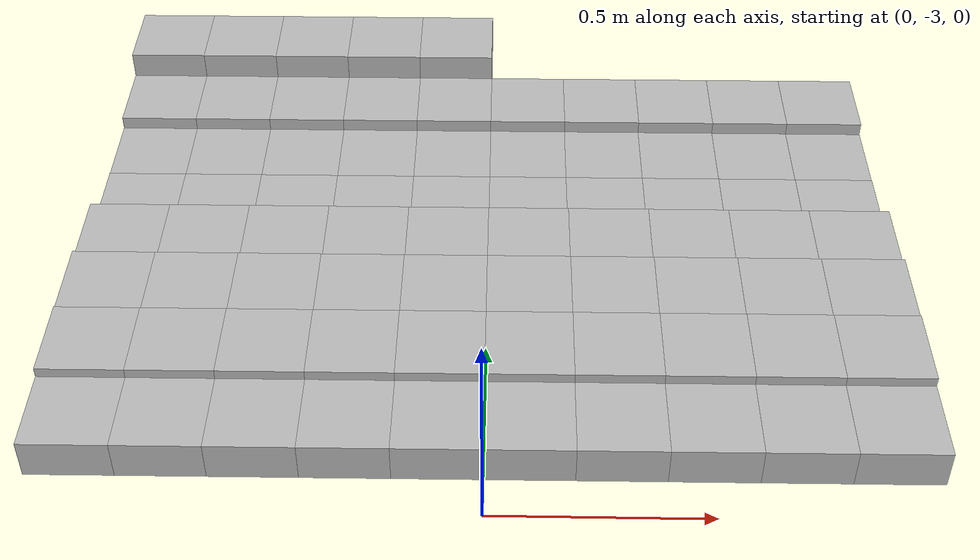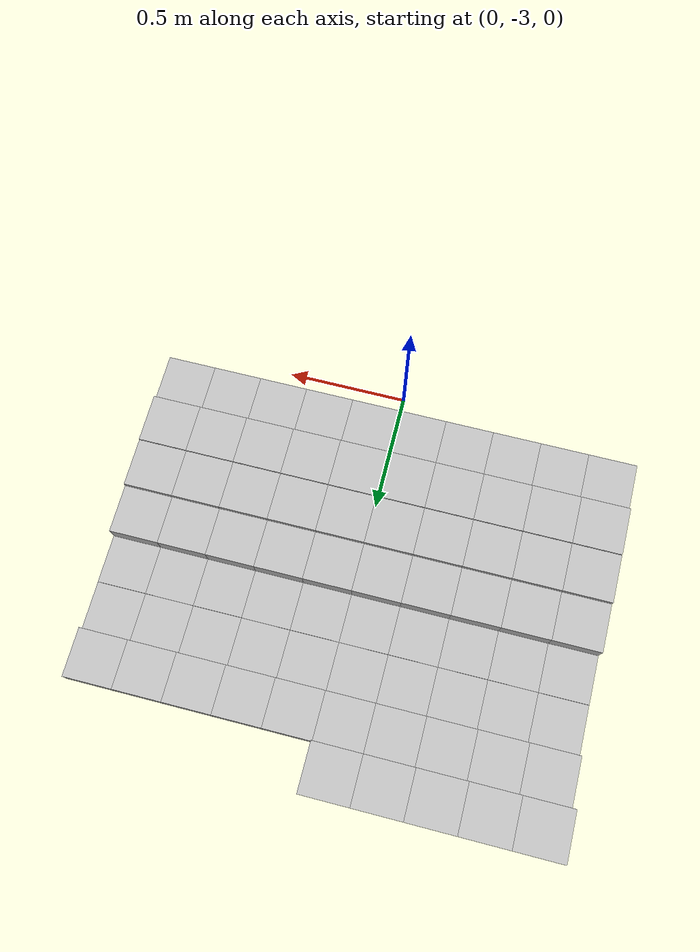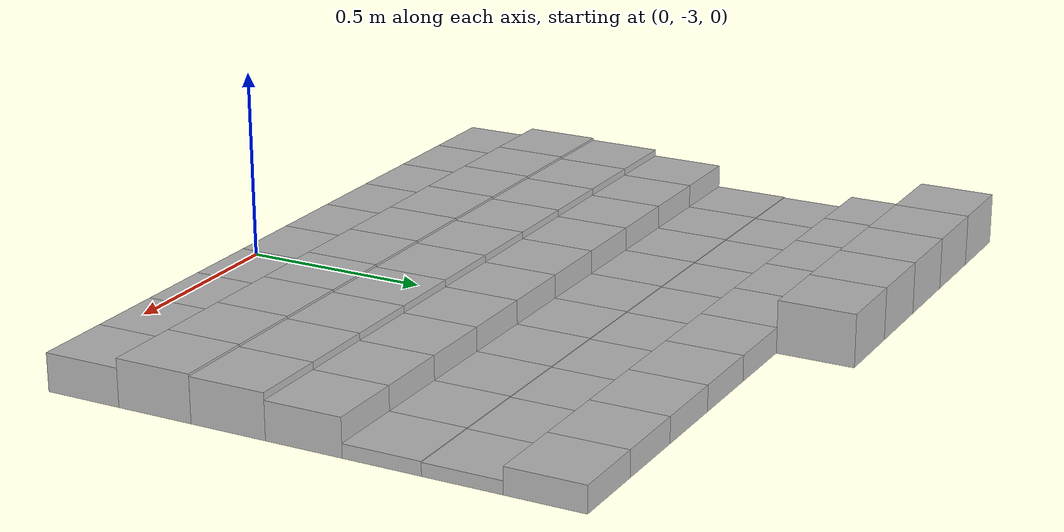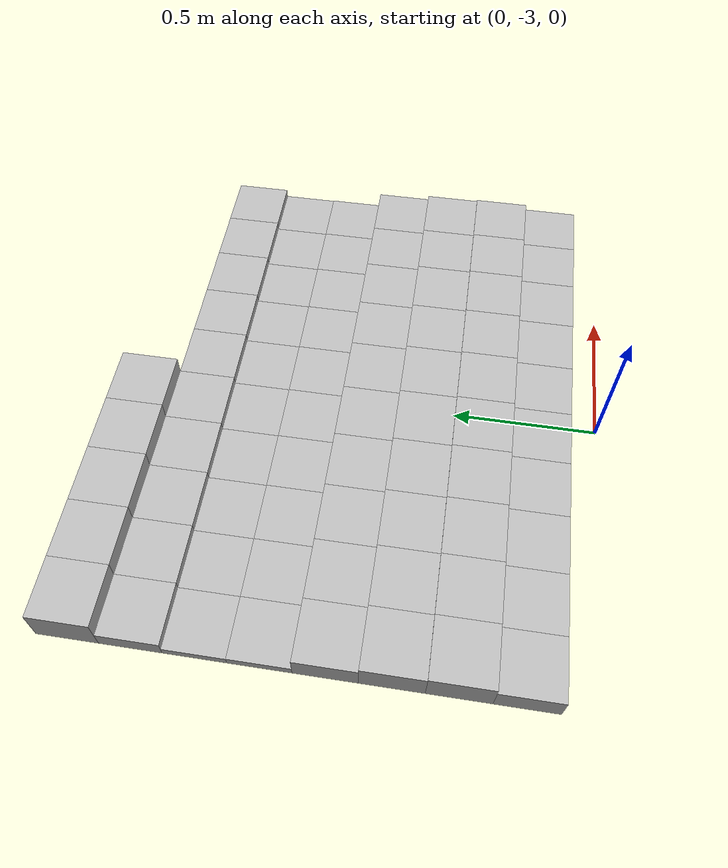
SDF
<sdf version="1.6">
 <model name="Terrain">
  <static>true</static>
  <link name="box_7_0">
   <pose>-0.9 -1.4 0.067952245221 0 0 0</pose>
   <inertial>
    <mass>1.0</mass>
    <inertia><ixx>0.0</ixx><ixy>0.0</ixy><ixz>0.0</ixz><iyy>0.0</iyy><iyz>0.0</iyz><izz>0.0</izz></inertia>
   </inertial>
   <collision name="collision"><geometry><box><size>0.2 0.2 0.135904490442</size></box></geometry></collision>
   <visual name="visual"><geometry><box><size>0.2 0.2 0.135904490442</size></box></geometry></visual>
  </link>
  <link name="box_7_1">
   <pose>-0.7 -1.4 0.067952245221 0 0 0</pose>
   <inertial>
    <mass>1.0</mass>
    <inertia><ixx>0.0</ixx><ixy>0.0</ixy><ixz>0.0</ixz><iyy>0.0</iyy><iyz>0.0</iyz><izz>0.0</izz></inertia>
   </inertial>
   <collision name="collision"><geometry><box><size>0.2 0.2 0.135904490442</size></box></geometry></collision>
   <visual name="visual"><geometry><box><size>0.2 0.2 0.135904490442</size></box></geometry></visual>
  </link>
  <link name="box_7_2">
   <pose>-0.5 -1.4 0.067952245221 0 0 0</pose>
   <inertial>
    <mass>1.0</mass>
    <inertia><ixx>0.0</ixx><ixy>0.0</ixy><ixz>0.0</ixz><iyy>0.0</iyy><iyz>0.0</iyz><izz>0.0</izz></inertia>
   </inertial>
   <collision name="collision"><geometry><box><size>0.2 0.2 0.135904490442</size></box></geometry></collision>
   <visual name="visual"><geometry><box><size>0.2 0.2 0.135904490442</size></box></geometry></visual>
  </link>
  <link name="box_7_3">
   <pose>-0.3 -1.4 0.067952245221 0 0 0</pose>
   <inertial>
    <mass>1.0</mass>
    <inertia><ixx>0.0</ixx><ixy>0.0</ixy><ixz>0.0</ixz><iyy>0.0</iyy><iyz>0.0</iyz><izz>0.0</izz></inertia>
   </inertial>
   <collision name="collision"><geometry><box><size>0.2 0.2 0.135904490442</size></box></geometry></collision>
   <visual name="visual"><geometry><box><size>0.2 0.2 0.135904490442</size></box></geometry></visual>
  </link>
  <link name="box_7_4">
   <pose>-0.1 -1.4 0.067952245221 0 0 0</pose>
   <inertial>
    <mass>1.0</mass>
    <inertia><ixx>0.0</ixx><ixy>0.0</ixy><ixz>0.0</ixz><iyy>0.0</iyy><iyz>0.0</iyz><izz>0.0</izz></inertia>
   </inertial>
   <collision name="collision"><geometry><box><size>0.2 0.2 0.135904490442</size></box></geometry></collision>
   <visual name="visual"><geometry><box><size>0.2 0.2 0.135904490442</size></box></geometry></visual>
  </link>
  <link name="box_8_0">
   <pose>-0.9 -1.6 0.0331757197622 0 0 0</pose>
   <inertial>
    <mass>1.0</mass>
    <inertia><ixx>0.0</ixx><ixy>0.0</ixy><ixz>0.0</ixz><iyy>0.0</iyy><iyz>0.0</iyz><izz>0.0</izz></inertia>
   </inertial>
   <collision name="collision"><geometry><box><size>0.2 0.2 0.0663514395244</size></box></geometry></collision>
   <visual name="visual"><geometry><box><size>0.2 0.2 0.0663514395244</size></box></geometry></visual>
  </link>
  <link name="box_8_1">
   <pose>-0.7 -1.6 0.0331757197622 0 0 0</pose>
   <inertial>
    <mass>1.0</mass>
    <inertia><ixx>0.0</ixx><ixy>0.0</ixy><ixz>0.0</ixz><iyy>0.0</iyy><iyz>0.0</iyz><izz>0.0</izz></inertia>
   </inertial>
   <collision name="collision"><geometry><box><size>0.2 0.2 0.0663514395244</size></box></geometry></collision>
   <visual name="visual"><geometry><box><size>0.2 0.2 0.0663514395244</size></box></geometry></visual>
  </link>
  <link name="box_8_2">
   <pose>-0.5 -1.6 0.0331757197622 0 0 0</pose>
   <inertial>
    <mass>1.0</mass>
    <inertia><ixx>0.0</ixx><ixy>0.0</ixy><ixz>0.0</ixz><iyy>0.0</iyy><iyz>0.0</iyz><izz>0.0</izz></inertia>
   </inertial>
   <collision name="collision"><geometry><box><size>0.2 0.2 0.0663514395244</size></box></geometry></collision>
   <visual name="visual"><geometry><box><size>0.2 0.2 0.0663514395244</size></box></geometry></visual>
  </link>
  <link name="box_8_3">
   <pose>-0.3 -1.6 0.0331757197622 0 0 0</pose>
   <inertial>
    <mass>1.0</mass>
    <inertia><ixx>0.0</ixx><ixy>0.0</ixy><ixz>0.0</ixz><iyy>0.0</iyy><iyz>0.0</iyz><izz>0.0</izz></inertia>
   </inertial>
   <collision name="collision"><geometry><box><size>0.2 0.2 0.0663514395244</size></box></geometry></collision>
   <visual name="visual"><geometry><box><size>0.2 0.2 0.0663514395244</size></box></geometry></visual>
  </link>
  <link name="box_8_4">
   <pose>-0.1 -1.6 0.0331757197622 0 0 0</pose>
   <inertial>
    <mass>1.0</mass>
    <inertia><ixx>0.0</ixx><ixy>0.0</ixy><ixz>0.0</ixz><iyy>0.0</iyy><iyz>0.0</iyz><izz>0.0</izz></inertia>
   </inertial>
   <collision name="collision"><geometry><box><size>0.2 0.2 0.0663514395244</size></box></geometry></collision>
   <visual name="visual"><geometry><box><size>0.2 0.2 0.0663514395244</size></box></geometry></visual>
  </link>
  <link name="box_8_5">
   <pose>0.1 -1.6 0.0331757197622 0 0 0</pose>
   <inertial>
    <mass>1.0</mass>
    <inertia><ixx>0.0</ixx><ixy>0.0</ixy><ixz>0.0</ixz><iyy>0.0</iyy><iyz>0.0</iyz><izz>0.0</izz></inertia>
   </inertial>
   <collision name="collision"><geometry><box><size>0.2 0.2 0.0663514395244</size></box></geometry></collision>
   <visual name="visual"><geometry><box><size>0.2 0.2 0.0663514395244</size></box></geometry></visual>
  </link>
  <link name="box_8_6">
   <pose>0.3 -1.6 0.0331757197622 0 0 0</pose>
   <inertial>
    <mass>1.0</mass>
    <inertia><ixx>0.0</ixx><ixy>0.0</ixy><ixz>0.0</ixz><iyy>0.0</iyy><iyz>0.0</iyz><izz>0.0</izz></inertia>
   </inertial>
   <collision name="collision"><geometry><box><size>0.2 0.2 0.0663514395244</size></box></geometry></collision>
   <visual name="visual"><geometry><box><size>0.2 0.2 0.0663514395244</size></box></geometry></visual>
  </link>
  <link name="box_8_7">
   <pose>0.5 -1.6 0.0331757197622 0 0 0</pose>
   <inertial>
    <mass>1.0</mass>
    <inertia><ixx>0.0</ixx><ixy>0.0</ixy><ixz>0.0</ixz><iyy>0.0</iyy><iyz>0.0</iyz><izz>0.0</izz></inertia>
   </inertial>
   <collision name="collision"><geometry><box><size>0.2 0.2 0.0663514395244</size></box></geometry></collision>
   <visual name="visual"><geometry><box><size>0.2 0.2 0.0663514395244</size></box></geometry></visual>
  </link>
  <link name="box_8_8">
   <pose>0.7 -1.6 0.0331757197622 0 0 0</pose>
   <inertial>
    <mass>1.0</mass>
    <inertia><ixx>0.0</ixx><ixy>0.0</ixy><ixz>0.0</ixz><iyy>0.0</iyy><iyz>0.0</iyz><izz>0.0</izz></inertia>
   </inertial>
   <collision name="collision"><geometry><box><size>0.2 0.2 0.0663514395244</size></box></geometry></collision>
   <visual name="visual"><geometry><box><size>0.2 0.2 0.0663514395244</size></box></geometry></visual>
  </link>
  <link name="box_8_9">
   <pose>0.9 -1.6 0.0331757197622 0 0 0</pose>
   <inertial>
    <mass>1.0</mass>
    <inertia><ixx>0.0</ixx><ixy>0.0</ixy><ixz>0.0</ixz><iyy>0.0</iyy><iyz>0.0</iyz><izz>0.0</izz></inertia>
   </inertial>
   <collision name="collision"><geometry><box><size>0.2 0.2 0.0663514395244</size></box></geometry></collision>
   <visual name="visual"><geometry><box><size>0.2 0.2 0.0663514395244</size></box></geometry></visual>
  </link>
  <link name="box_9_0">
   <pose>-0.9 -1.8 0.0165482107852 0 0 0</pose>
   <inertial>
    <mass>1.0</mass>
    <inertia><ixx>0.0</ixx><ixy>0.0</ixy><ixz>0.0</ixz><iyy>0.0</iyy><iyz>0.0</iyz><izz>0.0</izz></inertia>
   </inertial>
   <collision name="collision"><geometry><box><size>0.2 0.2 0.0330964215704</size></box></geometry></collision>
   <visual name="visual"><geometry><box><size>0.2 0.2 0.0330964215704</size></box></geometry></visual>
  </link>
  <link name="box_9_1">
   <pose>-0.7 -1.8 0.0165482107852 0 0 0</pose>
   <inertial>
    <mass>1.0</mass>
    <inertia><ixx>0.0</ixx><ixy>0.0</ixy><ixz>0.0</ixz><iyy>0.0</iyy><iyz>0.0</iyz><izz>0.0</izz></inertia>
   </inertial>
   <collision name="collision"><geometry><box><size>0.2 0.2 0.0330964215704</size></box></geometry></collision>
   <visual name="visual"><geometry><box><size>0.2 0.2 0.0330964215704</size></box></geometry></visual>
  </link>
  <link name="box_9_2">
   <pose>-0.5 -1.8 0.0165482107852 0 0 0</pose>
   <inertial>
    <mass>1.0</mass>
    <inertia><ixx>0.0</ixx><ixy>0.0</ixy><ixz>0.0</ixz><iyy>0.0</iyy><iyz>0.0</iyz><izz>0.0</izz></inertia>
   </inertial>
   <collision name="collision"><geometry><box><size>0.2 0.2 0.0330964215704</size></box></geometry></collision>
   <visual name="visual"><geometry><box><size>0.2 0.2 0.0330964215704</size></box></geometry></visual>
  </link>
  <link name="box_9_3">
   <pose>-0.3 -1.8 0.0165482107852 0 0 0</pose>
   <inertial>
    <mass>1.0</mass>
    <inertia><ixx>0.0</ixx><ixy>0.0</ixy><ixz>0.0</ixz><iyy>0.0</iyy><iyz>0.0</iyz><izz>0.0</izz></inertia>
   </inertial>
   <collision name="collision"><geometry><box><size>0.2 0.2 0.0330964215704</size></box></geometry></collision>
   <visual name="visual"><geometry><box><size>0.2 0.2 0.0330964215704</size></box></geometry></visual>
  </link>
  <link name="box_9_4">
   <pose>-0.1 -1.8 0.0165482107852 0 0 0</pose>
   <inertial>
    <mass>1.0</mass>
    <inertia><ixx>0.0</ixx><ixy>0.0</ixy><ixz>0.0</ixz><iyy>0.0</iyy><iyz>0.0</iyz><izz>0.0</izz></inertia>
   </inertial>
   <collision name="collision"><geometry><box><size>0.2 0.2 0.0330964215704</size></box></geometry></collision>
   <visual name="visual"><geometry><box><size>0.2 0.2 0.0330964215704</size></box></geometry></visual>
  </link>
  <link name="box_9_5">
   <pose>0.1 -1.8 0.0165482107852 0 0 0</pose>
   <inertial>
    <mass>1.0</mass>
    <inertia><ixx>0.0</ixx><ixy>0.0</ixy><ixz>0.0</ixz><iyy>0.0</iyy><iyz>0.0</iyz><izz>0.0</izz></inertia>
   </inertial>
   <collision name="collision"><geometry><box><size>0.2 0.2 0.0330964215704</size></box></geometry></collision>
   <visual name="visual"><geometry><box><size>0.2 0.2 0.0330964215704</size></box></geometry></visual>
  </link>
  <link name="box_9_6">
   <pose>0.3 -1.8 0.0165482107852 0 0 0</pose>
   <inertial>
    <mass>1.0</mass>
    <inertia><ixx>0.0</ixx><ixy>0.0</ixy><ixz>0.0</ixz><iyy>0.0</iyy><iyz>0.0</iyz><izz>0.0</izz></inertia>
   </inertial>
   <collision name="collision"><geometry><box><size>0.2 0.2 0.0330964215704</size></box></geometry></collision>
   <visual name="visual"><geometry><box><size>0.2 0.2 0.0330964215704</size></box></geometry></visual>
  </link>
  <link name="box_9_7">
   <pose>0.5 -1.8 0.0165482107852 0 0 0</pose>
   <inertial>
    <mass>1.0</mass>
    <inertia><ixx>0.0</ixx><ixy>0.0</ixy><ixz>0.0</ixz><iyy>0.0</iyy><iyz>0.0</iyz><izz>0.0</izz></inertia>
   </inertial>
   <collision name="collision"><geometry><box><size>0.2 0.2 0.0330964215704</size></box></geometry></collision>
   <visual name="visual"><geometry><box><size>0.2 0.2 0.0330964215704</size></box></geometry></visual>
  </link>
  <link name="box_9_8">
   <pose>0.7 -1.8 0.0165482107852 0 0 0</pose>
   <inertial>
    <mass>1.0</mass>
    <inertia><ixx>0.0</ixx><ixy>0.0</ixy><ixz>0.0</ixz><iyy>0.0</iyy><iyz>0.0</iyz><izz>0.0</izz></inertia>
   </inertial>
   <collision name="collision"><geometry><box><size>0.2 0.2 0.0330964215704</size></box></geometry></collision>
   <visual name="visual"><geometry><box><size>0.2 0.2 0.0330964215704</size></box></geometry></visual>
  </link>
  <link name="box_9_9">
   <pose>0.9 -1.8 0.0165482107852 0 0 0</pose>
   <inertial>
    <mass>1.0</mass>
    <inertia><ixx>0.0</ixx><ixy>0.0</ixy><ixz>0.0</ixz><iyy>0.0</iyy><iyz>0.0</iyz><izz>0.0</izz></inertia>
   </inertial>
   <collision name="collision"><geometry><box><size>0.2 0.2 0.0330964215704</size></box></geometry></collision>
   <visual name="visual"><geometry><box><size>0.2 0.2 0.0330964215704</size></box></geometry></visual>
  </link>
  <link name="box_10_0">
   <pose>-0.9 -2.0 0.0176340561365 0 0 0</pose>
   <inertial>
    <mass>1.0</mass>
    <inertia><ixx>0.0</ixx><ixy>0.0</ixy><ixz>0.0</ixz><iyy>0.0</iyy><iyz>0.0</iyz><izz>0.0</izz></inertia>
   </inertial>
   <collision name="collision"><geometry><box><size>0.2 0.2 0.0352681122729</size></box></geometry></collision>
   <visual name="visual"><geometry><box><size>0.2 0.2 0.0352681122729</size></box></geometry></visual>
  </link>
  <link name="box_10_1">
   <pose>-0.7 -2.0 0.0176340561365 0 0 0</pose>
   <inertial>
    <mass>1.0</mass>
    <inertia><ixx>0.0</ixx><ixy>0.0</ixy><ixz>0.0</ixz><iyy>0.0</iyy><iyz>0.0</iyz><izz>0.0</izz></inertia>
   </inertial>
   <collision name="collision"><geometry><box><size>0.2 0.2 0.0352681122729</size></box></geometry></collision>
   <visual name="visual"><geometry><box><size>0.2 0.2 0.0352681122729</size></box></geometry></visual>
  </link>
  <link name="box_10_2">
   <pose>-0.5 -2.0 0.0176340561365 0 0 0</pose>
   <inertial>
    <mass>1.0</mass>
    <inertia><ixx>0.0</ixx><ixy>0.0</ixy><ixz>0.0</ixz><iyy>0.0</iyy><iyz>0.0</iyz><izz>0.0</izz></inertia>
   </inertial>
   <collision name="collision"><geometry><box><size>0.2 0.2 0.0352681122729</size></box></geometry></collision>
   <visual name="visual"><geometry><box><size>0.2 0.2 0.0352681122729</size></box></geometry></visual>
  </link>
  <link name="box_10_3">
   <pose>-0.3 -2.0 0.0176340561365 0 0 0</pose>
   <inertial>
    <mass>1.0</mass>
    <inertia><ixx>0.0</ixx><ixy>0.0</ixy><ixz>0.0</ixz><iyy>0.0</iyy><iyz>0.0</iyz><izz>0.0</izz></inertia>
   </inertial>
   <collision name="collision"><geometry><box><size>0.2 0.2 0.0352681122729</size></box></geometry></collision>
   <visual name="visual"><geometry><box><size>0.2 0.2 0.0352681122729</size></box></geometry></visual>
  </link>
  <link name="box_10_4">
   <pose>-0.1 -2.0 0.0176340561365 0 0 0</pose>
   <inertial>
    <mass>1.0</mass>
    <inertia><ixx>0.0</ixx><ixy>0.0</ixy><ixz>0.0</ixz><iyy>0.0</iyy><iyz>0.0</iyz><izz>0.0</izz></inertia>
   </inertial>
   <collision name="collision"><geometry><box><size>0.2 0.2 0.0352681122729</size></box></geometry></collision>
   <visual name="visual"><geometry><box><size>0.2 0.2 0.0352681122729</size></box></geometry></visual>
  </link>
  <link name="box_10_5">
   <pose>0.1 -2.0 0.0176340561365 0 0 0</pose>
   <inertial>
    <mass>1.0</mass>
    <inertia><ixx>0.0</ixx><ixy>0.0</ixy><ixz>0.0</ixz><iyy>0.0</iyy><iyz>0.0</iyz><izz>0.0</izz></inertia>
   </inertial>
   <collision name="collision"><geometry><box><size>0.2 0.2 0.0352681122729</size></box></geometry></collision>
   <visual name="visual"><geometry><box><size>0.2 0.2 0.0352681122729</size></box></geometry></visual>
  </link>
  <link name="box_10_6">
   <pose>0.3 -2.0 0.0176340561365 0 0 0</pose>
   <inertial>
    <mass>1.0</mass>
    <inertia><ixx>0.0</ixx><ixy>0.0</ixy><ixz>0.0</ixz><iyy>0.0</iyy><iyz>0.0</iyz><izz>0.0</izz></inertia>
   </inertial>
   <collision name="collision"><geometry><box><size>0.2 0.2 0.0352681122729</size></box></geometry></collision>
   <visual name="visual"><geometry><box><size>0.2 0.2 0.0352681122729</size></box></geometry></visual>
  </link>
  <link name="box_10_7">
   <pose>0.5 -2.0 0.0176340561365 0 0 0</pose>
   <inertial>
    <mass>1.0</mass>
    <inertia><ixx>0.0</ixx><ixy>0.0</ixy><ixz>0.0</ixz><iyy>0.0</iyy><iyz>0.0</iyz><izz>0.0</izz></inertia>
   </inertial>
   <collision name="collision"><geometry><box><size>0.2 0.2 0.0352681122729</size></box></geometry></collision>
   <visual name="visual"><geometry><box><size>0.2 0.2 0.0352681122729</size></box></geometry></visual>
  </link>
  <link name="box_10_8">
   <pose>0.7 -2.0 0.0176340561365 0 0 0</pose>
   <inertial>
    <mass>1.0</mass>
    <inertia><ixx>0.0</ixx><ixy>0.0</ixy><ixz>0.0</ixz><iyy>0.0</iyy><iyz>0.0</iyz><izz>0.0</izz></inertia>
   </inertial>
   <collision name="collision"><geometry><box><size>0.2 0.2 0.0352681122729</size></box></geometry></collision>
   <visual name="visual"><geometry><box><size>0.2 0.2 0.0352681122729</size></box></geometry></visual>
  </link>
  <link name="box_10_9">
   <pose>0.9 -2.0 0.0176340561365 0 0 0</pose>
   <inertial>
    <mass>1.0</mass>
    <inertia><ixx>0.0</ixx><ixy>0.0</ixy><ixz>0.0</ixz><iyy>0.0</iyy><iyz>0.0</iyz><izz>0.0</izz></inertia>
   </inertial>
   <collision name="collision"><geometry><box><size>0.2 0.2 0.0352681122729</size></box></geometry></collision>
   <visual name="visual"><geometry><box><size>0.2 0.2 0.0352681122729</size></box></geometry></visual>
  </link>
  <link name="box_11_0">
   <pose>-0.9 -2.2 0.0486845954862 0 0 0</pose>
   <inertial>
    <mass>1.0</mass>
    <inertia><ixx>0.0</ixx><ixy>0.0</ixy><ixz>0.0</ixz><iyy>0.0</iyy><iyz>0.0</iyz><izz>0.0</izz></inertia>
   </inertial>
   <collision name="collision"><geometry><box><size>0.2 0.2 0.0973691909724</size></box></geometry></collision>
   <visual name="visual"><geometry><box><size>0.2 0.2 0.0973691909724</size></box></geometry></visual>
  </link>
  <link name="box_11_1">
   <pose>-0.7 -2.2 0.0486845954862 0 0 0</pose>
   <inertial>
    <mass>1.0</mass>
    <inertia><ixx>0.0</ixx><ixy>0.0</ixy><ixz>0.0</ixz><iyy>0.0</iyy><iyz>0.0</iyz><izz>0.0</izz></inertia>
   </inertial>
   <collision name="collision"><geometry><box><size>0.2 0.2 0.0973691909724</size></box></geometry></collision>
   <visual name="visual"><geometry><box><size>0.2 0.2 0.0973691909724</size></box></geometry></visual>
  </link>
  <link name="box_11_2">
   <pose>-0.5 -2.2 0.0486845954862 0 0 0</pose>
   <inertial>
    <mass>1.0</mass>
    <inertia><ixx>0.0</ixx><ixy>0.0</ixy><ixz>0.0</ixz><iyy>0.0</iyy><iyz>0.0</iyz><izz>0.0</izz></inertia>
   </inertial>
   <collision name="collision"><geometry><box><size>0.2 0.2 0.0973691909724</size></box></geometry></collision>
   <visual name="visual"><geometry><box><size>0.2 0.2 0.0973691909724</size></box></geometry></visual>
  </link>
  <link name="box_11_3">
   <pose>-0.3 -2.2 0.0486845954862 0 0 0</pose>
   <inertial>
    <mass>1.0</mass>
    <inertia><ixx>0.0</ixx><ixy>0.0</ixy><ixz>0.0</ixz><iyy>0.0</iyy><iyz>0.0</iyz><izz>0.0</izz></inertia>
   </inertial>
   <collision name="collision"><geometry><box><size>0.2 0.2 0.0973691909724</size></box></geometry></collision>
   <visual name="visual"><geometry><box><size>0.2 0.2 0.0973691909724</size></box></geometry></visual>
  </link>
  <link name="box_11_4">
   <pose>-0.1 -2.2 0.0486845954862 0 0 0</pose>
   <inertial>
    <mass>1.0</mass>
    <inertia><ixx>0.0</ixx><ixy>0.0</ixy><ixz>0.0</ixz><iyy>0.0</iyy><iyz>0.0</iyz><izz>0.0</izz></inertia>
   </inertial>
   <collision name="collision"><geometry><box><size>0.2 0.2 0.0973691909724</size></box></geometry></collision>
   <visual name="visual"><geometry><box><size>0.2 0.2 0.0973691909724</size></box></geometry></visual>
  </link>
  <link name="box_11_5">
   <pose>0.1 -2.2 0.0486845954862 0 0 0</pose>
   <inertial>
    <mass>1.0</mass>
    <inertia><ixx>0.0</ixx><ixy>0.0</ixy><ixz>0.0</ixz><iyy>0.0</iyy><iyz>0.0</iyz><izz>0.0</izz></inertia>
   </inertial>
   <collision name="collision"><geometry><box><size>0.2 0.2 0.0973691909724</size></box></geometry></collision>
   <visual name="visual"><geometry><box><size>0.2 0.2 0.0973691909724</size></box></geometry></visual>
  </link>
  <link name="box_11_6">
   <pose>0.3 -2.2 0.0486845954862 0 0 0</pose>
   <inertial>
    <mass>1.0</mass>
    <inertia><ixx>0.0</ixx><ixy>0.0</ixy><ixz>0.0</ixz><iyy>0.0</iyy><iyz>0.0</iyz><izz>0.0</izz></inertia>
   </inertial>
   <collision name="collision"><geometry><box><size>0.2 0.2 0.0973691909724</size></box></geometry></collision>
   <visual name="visual"><geometry><box><size>0.2 0.2 0.0973691909724</size></box></geometry></visual>
  </link>
  <link name="box_11_7">
   <pose>0.5 -2.2 0.0486845954862 0 0 0</pose>
   <inertial>
    <mass>1.0</mass>
    <inertia><ixx>0.0</ixx><ixy>0.0</ixy><ixz>0.0</ixz><iyy>0.0</iyy><iyz>0.0</iyz><izz>0.0</izz></inertia>
   </inertial>
   <collision name="collision"><geometry><box><size>0.2 0.2 0.0973691909724</size></box></geometry></collision>
   <visual name="visual"><geometry><box><size>0.2 0.2 0.0973691909724</size></box></geometry></visual>
  </link>
  <link name="box_11_8">
   <pose>0.7 -2.2 0.0486845954862 0 0 0</pose>
   <inertial>
    <mass>1.0</mass>
    <inertia><ixx>0.0</ixx><ixy>0.0</ixy><ixz>0.0</ixz><iyy>0.0</iyy><iyz>0.0</iyz><izz>0.0</izz></inertia>
   </inertial>
   <collision name="collision"><geometry><box><size>0.2 0.2 0.0973691909724</size></box></geometry></collision>
   <visual name="visual"><geometry><box><size>0.2 0.2 0.0973691909724</size></box></geometry></visual>
  </link>
  <link name="box_11_9">
   <pose>0.9 -2.2 0.0486845954862 0 0 0</pose>
   <inertial>
    <mass>1.0</mass>
    <inertia><ixx>0.0</ixx><ixy>0.0</ixy><ixz>0.0</ixz><iyy>0.0</iyy><iyz>0.0</iyz><izz>0.0</izz></inertia>
   </inertial>
   <collision name="collision"><geometry><box><size>0.2 0.2 0.0973691909724</size></box></geometry></collision>
   <visual name="visual"><geometry><box><size>0.2 0.2 0.0973691909724</size></box></geometry></visual>
  </link>
  <link name="box_12_0">
   <pose>-0.9 -2.4 0.0577402236175 0 0 0</pose>
   <inertial>
    <mass>1.0</mass>
    <inertia><ixx>0.0</ixx><ixy>0.0</ixy><ixz>0.0</ixz><iyy>0.0</iyy><iyz>0.0</iyz><izz>0.0</izz></inertia>
   </inertial>
   <collision name="collision"><geometry><box><size>0.2 0.2 0.115480447235</size></box></geometry></collision>
   <visual name="visual"><geometry><box><size>0.2 0.2 0.115480447235</size></box></geometry></visual>
  </link>
  <link name="box_12_1">
   <pose>-0.7 -2.4 0.0577402236175 0 0 0</pose>
   <inertial>
    <mass>1.0</mass>
    <inertia><ixx>0.0</ixx><ixy>0.0</ixy><ixz>0.0</ixz><iyy>0.0</iyy><iyz>0.0</iyz><izz>0.0</izz></inertia>
   </inertial>
   <collision name="collision"><geometry><box><size>0.2 0.2 0.115480447235</size></box></geometry></collision>
   <visual name="visual"><geometry><box><size>0.2 0.2 0.115480447235</size></box></geometry></visual>
  </link>
  <link name="box_12_2">
   <pose>-0.5 -2.4 0.0577402236175 0 0 0</pose>
   <inertial>
    <mass>1.0</mass>
    <inertia><ixx>0.0</ixx><ixy>0.0</ixy><ixz>0.0</ixz><iyy>0.0</iyy><iyz>0.0</iyz><izz>0.0</izz></inertia>
   </inertial>
   <collision name="collision"><geometry><box><size>0.2 0.2 0.115480447235</size></box></geometry></collision>
   <visual name="visual"><geometry><box><size>0.2 0.2 0.115480447235</size></box></geometry></visual>
  </link>
  <link name="box_12_3">
   <pose>-0.3 -2.4 0.0577402236175 0 0 0</pose>
   <inertial>
    <mass>1.0</mass>
    <inertia><ixx>0.0</ixx><ixy>0.0</ixy><ixz>0.0</ixz><iyy>0.0</iyy><iyz>0.0</iyz><izz>0.0</izz></inertia>
   </inertial>
   <collision name="collision"><geometry><box><size>0.2 0.2 0.115480447235</size></box></geometry></collision>
   <visual name="visual"><geometry><box><size>0.2 0.2 0.115480447235</size></box></geometry></visual>
  </link>
  <link name="box_12_4">
   <pose>-0.1 -2.4 0.0577402236175 0 0 0</pose>
   <inertial>
    <mass>1.0</mass>
    <inertia><ixx>0.0</ixx><ixy>0.0</ixy><ixz>0.0</ixz><iyy>0.0</iyy><iyz>0.0</iyz><izz>0.0</izz></inertia>
   </inertial>
   <collision name="collision"><geometry><box><size>0.2 0.2 0.115480447235</size></box></geometry></collision>
   <visual name="visual"><geometry><box><size>0.2 0.2 0.115480447235</size></box></geometry></visual>
  </link>
  <link name="box_12_5">
   <pose>0.1 -2.4 0.0577402236175 0 0 0</pose>
   <inertial>
    <mass>1.0</mass>
    <inertia><ixx>0.0</ixx><ixy>0.0</ixy><ixz>0.0</ixz><iyy>0.0</iyy><iyz>0.0</iyz><izz>0.0</izz></inertia>
   </inertial>
   <collision name="collision"><geometry><box><size>0.2 0.2 0.115480447235</size></box></geometry></collision>
   <visual name="visual"><geometry><box><size>0.2 0.2 0.115480447235</size></box></geometry></visual>
  </link>
  <link name="box_12_6">
   <pose>0.3 -2.4 0.0577402236175 0 0 0</pose>
   <inertial>
    <mass>1.0</mass>
    <inertia><ixx>0.0</ixx><ixy>0.0</ixy><ixz>0.0</ixz><iyy>0.0</iyy><iyz>0.0</iyz><izz>0.0</izz></inertia>
   </inertial>
   <collision name="collision"><geometry><box><size>0.2 0.2 0.115480447235</size></box></geometry></collision>
   <visual name="visual"><geometry><box><size>0.2 0.2 0.115480447235</size></box></geometry></visual>
  </link>
  <link name="box_12_7">
   <pose>0.5 -2.4 0.0577402236175 0 0 0</pose>
   <inertial>
    <mass>1.0</mass>
    <inertia><ixx>0.0</ixx><ixy>0.0</ixy><ixz>0.0</ixz><iyy>0.0</iyy><iyz>0.0</iyz><izz>0.0</izz></inertia>
   </inertial>
   <collision name="collision"><geometry><box><size>0.2 0.2 0.115480447235</size></box></geometry></collision>
   <visual name="visual"><geometry><box><size>0.2 0.2 0.115480447235</size></box></geometry></visual>
  </link>
  <link name="box_12_8">
   <pose>0.7 -2.4 0.0577402236175 0 0 0</pose>
   <inertial>
    <mass>1.0</mass>
    <inertia><ixx>0.0</ixx><ixy>0.0</ixy><ixz>0.0</ixz><iyy>0.0</iyy><iyz>0.0</iyz><izz>0.0</izz></inertia>
   </inertial>
   <collision name="collision"><geometry><box><size>0.2 0.2 0.115480447235</size></box></geometry></collision>
   <visual name="visual"><geometry><box><size>0.2 0.2 0.115480447235</size></box></geometry></visual>
  </link>
  <link name="box_12_9">
   <pose>0.9 -2.4 0.0577402236175 0 0 0</pose>
   <inertial>
    <mass>1.0</mass>
    <inertia><ixx>0.0</ixx><ixy>0.0</ixy><ixz>0.0</ixz><iyy>0.0</iyy><iyz>0.0</iyz><izz>0.0</izz></inertia>
   </inertial>
   <collision name="collision"><geometry><box><size>0.2 0.2 0.115480447235</size></box></geometry></collision>
   <visual name="visual"><geometry><box><size>0.2 0.2 0.115480447235</size></box></geometry></visual>
  </link>
  <link name="box_13_0">
   <pose>-0.9 -2.6 0.0606669316536 0 0 0</pose>
   <inertial>
    <mass>1.0</mass>
    <inertia><ixx>0.0</ixx><ixy>0.0</ixy><ixz>0.0</ixz><iyy>0.0</iyy><iyz>0.0</iyz><izz>0.0</izz></inertia>
   </inertial>
   <collision name="collision"><geometry><box><size>0.2 0.2 0.121333863307</size></box></geometry></collision>
   <visual name="visual"><geometry><box><size>0.2 0.2 0.121333863307</size></box></geometry></visual>
  </link>
  <link name="box_13_1">
   <pose>-0.7 -2.6 0.0606669316536 0 0 0</pose>
   <inertial>
    <mass>1.0</mass>
    <inertia><ixx>0.0</ixx><ixy>0.0</ixy><ixz>0.0</ixz><iyy>0.0</iyy><iyz>0.0</iyz><izz>0.0</izz></inertia>
   </inertial>
   <collision name="collision"><geometry><box><size>0.2 0.2 0.121333863307</size></box></geometry></collision>
   <visual name="visual"><geometry><box><size>0.2 0.2 0.121333863307</size></box></geometry></visual>
  </link>
  <link name="box_13_2">
   <pose>-0.5 -2.6 0.0606669316536 0 0 0</pose>
   <inertial>
    <mass>1.0</mass>
    <inertia><ixx>0.0</ixx><ixy>0.0</ixy><ixz>0.0</ixz><iyy>0.0</iyy><iyz>0.0</iyz><izz>0.0</izz></inertia>
   </inertial>
   <collision name="collision"><geometry><box><size>0.2 0.2 0.121333863307</size></box></geometry></collision>
   <visual name="visual"><geometry><box><size>0.2 0.2 0.121333863307</size></box></geometry></visual>
  </link>
  <link name="box_13_3">
   <pose>-0.3 -2.6 0.0606669316536 0 0 0</pose>
   <inertial>
    <mass>1.0</mass>
    <inertia><ixx>0.0</ixx><ixy>0.0</ixy><ixz>0.0</ixz><iyy>0.0</iyy><iyz>0.0</iyz><izz>0.0</izz></inertia>
   </inertial>
   <collision name="collision"><geometry><box><size>0.2 0.2 0.121333863307</size></box></geometry></collision>
   <visual name="visual"><geometry><box><size>0.2 0.2 0.121333863307</size></box></geometry></visual>
  </link>
  <link name="box_13_4">
   <pose>-0.1 -2.6 0.0606669316536 0 0 0</pose>
   <inertial>
    <mass>1.0</mass>
    <inertia><ixx>0.0</ixx><ixy>0.0</ixy><ixz>0.0</ixz><iyy>0.0</iyy><iyz>0.0</iyz><izz>0.0</izz></inertia>
   </inertial>
   <collision name="collision"><geometry><box><size>0.2 0.2 0.121333863307</size></box></geometry></collision>
   <visual name="visual"><geometry><box><size>0.2 0.2 0.121333863307</size></box></geometry></visual>
  </link>
  <link name="box_13_5">
   <pose>0.1 -2.6 0.0606669316536 0 0 0</pose>
   <inertial>
    <mass>1.0</mass>
    <inertia><ixx>0.0</ixx><ixy>0.0</ixy><ixz>0.0</ixz><iyy>0.0</iyy><iyz>0.0</iyz><izz>0.0</izz></inertia>
   </inertial>
   <collision name="collision"><geometry><box><size>0.2 0.2 0.121333863307</size></box></geometry></collision>
   <visual name="visual"><geometry><box><size>0.2 0.2 0.121333863307</size></box></geometry></visual>
  </link>
  <link name="box_13_6">
   <pose>0.3 -2.6 0.0606669316536 0 0 0</pose>
   <inertial>
    <mass>1.0</mass>
    <inertia><ixx>0.0</ixx><ixy>0.0</ixy><ixz>0.0</ixz><iyy>0.0</iyy><iyz>0.0</iyz><izz>0.0</izz></inertia>
   </inertial>
   <collision name="collision"><geometry><box><size>0.2 0.2 0.121333863307</size></box></geometry></collision>
   <visual name="visual"><geometry><box><size>0.2 0.2 0.121333863307</size></box></geometry></visual>
  </link>
  <link name="box_13_7">
   <pose>0.5 -2.6 0.0606669316536 0 0 0</pose>
   <inertial>
    <mass>1.0</mass>
    <inertia><ixx>0.0</ixx><ixy>0.0</ixy><ixz>0.0</ixz><iyy>0.0</iyy><iyz>0.0</iyz><izz>0.0</izz></inertia>
   </inertial>
   <collision name="collision"><geometry><box><size>0.2 0.2 0.121333863307</size></box></geometry></collision>
   <visual name="visual"><geometry><box><size>0.2 0.2 0.121333863307</size></box></geometry></visual>
  </link>
  <link name="box_13_8">
   <pose>0.7 -2.6 0.0606669316536 0 0 0</pose>
   <inertial>
    <mass>1.0</mass>
    <inertia><ixx>0.0</ixx><ixy>0.0</ixy><ixz>0.0</ixz><iyy>0.0</iyy><iyz>0.0</iyz><izz>0.0</izz></inertia>
   </inertial>
   <collision name="collision"><geometry><box><size>0.2 0.2 0.121333863307</size></box></geometry></collision>
   <visual name="visual"><geometry><box><size>0.2 0.2 0.121333863307</size></box></geometry></visual>
  </link>
  <link name="box_13_9">
   <pose>0.9 -2.6 0.0606669316536 0 0 0</pose>
   <inertial>
    <mass>1.0</mass>
    <inertia><ixx>0.0</ixx><ixy>0.0</ixy><ixz>0.0</ixz><iyy>0.0</iyy><iyz>0.0</iyz><izz>0.0</izz></inertia>
   </inertial>
   <collision name="collision"><geometry><box><size>0.2 0.2 0.121333863307</size></box></geometry></collision>
   <visual name="visual"><geometry><box><size>0.2 0.2 0.121333863307</size></box></geometry></visual>
  </link>
  <link name="box_14_0">
   <pose>-0.9 -2.8 0.0486620576123 0 0 0</pose>
   <inertial>
    <mass>1.0</mass>
    <inertia><ixx>0.0</ixx><ixy>0.0</ixy><ixz>0.0</ixz><iyy>0.0</iyy><iyz>0.0</iyz><izz>0.0</izz></inertia>
   </inertial>
   <collision name="collision"><geometry><box><size>0.2 0.2 0.0973241152246</size></box></geometry></collision>
   <visual name="visual"><geometry><box><size>0.2 0.2 0.0973241152246</size></box></geometry></visual>
  </link>
  <link name="box_14_1">
   <pose>-0.7 -2.8 0.0486620576123 0 0 0</pose>
   <inertial>
    <mass>1.0</mass>
    <inertia><ixx>0.0</ixx><ixy>0.0</ixy><ixz>0.0</ixz><iyy>0.0</iyy><iyz>0.0</iyz><izz>0.0</izz></inertia>
   </inertial>
   <collision name="collision"><geometry><box><size>0.2 0.2 0.0973241152246</size></box></geometry></collision>
   <visual name="visual"><geometry><box><size>0.2 0.2 0.0973241152246</size></box></geometry></visual>
  </link>
  <link name="box_14_2">
   <pose>-0.5 -2.8 0.0486620576123 0 0 0</pose>
   <inertial>
    <mass>1.0</mass>
    <inertia><ixx>0.0</ixx><ixy>0.0</ixy><ixz>0.0</ixz><iyy>0.0</iyy><iyz>0.0</iyz><izz>0.0</izz></inertia>
   </inertial>
   <collision name="collision"><geometry><box><size>0.2 0.2 0.0973241152246</size></box></geometry></collision>
   <visual name="visual"><geometry><box><size>0.2 0.2 0.0973241152246</size></box></geometry></visual>
  </link>
  <link name="box_14_3">
   <pose>-0.3 -2.8 0.0486620576123 0 0 0</pose>
   <inertial>
    <mass>1.0</mass>
    <inertia><ixx>0.0</ixx><ixy>0.0</ixy><ixz>0.0</ixz><iyy>0.0</iyy><iyz>0.0</iyz><izz>0.0</izz></inertia>
   </inertial>
   <collision name="collision"><geometry><box><size>0.2 0.2 0.0973241152246</size></box></geometry></collision>
   <visual name="visual"><geometry><box><size>0.2 0.2 0.0973241152246</size></box></geometry></visual>
  </link>
  <link name="box_14_4">
   <pose>-0.1 -2.8 0.0486620576123 0 0 0</pose>
   <inertial>
    <mass>1.0</mass>
    <inertia><ixx>0.0</ixx><ixy>0.0</ixy><ixz>0.0</ixz><iyy>0.0</iyy><iyz>0.0</iyz><izz>0.0</izz></inertia>
   </inertial>
   <collision name="collision"><geometry><box><size>0.2 0.2 0.0973241152246</size></box></geometry></collision>
   <visual name="visual"><geometry><box><size>0.2 0.2 0.0973241152246</size></box></geometry></visual>
  </link>
  <link name="box_14_5">
   <pose>0.1 -2.8 0.0486620576123 0 0 0</pose>
   <inertial>
    <mass>1.0</mass>
    <inertia><ixx>0.0</ixx><ixy>0.0</ixy><ixz>0.0</ixz><iyy>0.0</iyy><iyz>0.0</iyz><izz>0.0</izz></inertia>
   </inertial>
   <collision name="collision"><geometry><box><size>0.2 0.2 0.0973241152246</size></box></geometry></collision>
   <visual name="visual"><geometry><box><size>0.2 0.2 0.0973241152246</size></box></geometry></visual>
  </link>
  <link name="box_14_6">
   <pose>0.3 -2.8 0.0486620576123 0 0 0</pose>
   <inertial>
    <mass>1.0</mass>
    <inertia><ixx>0.0</ixx><ixy>0.0</ixy><ixz>0.0</ixz><iyy>0.0</iyy><iyz>0.0</iyz><izz>0.0</izz></inertia>
   </inertial>
   <collision name="collision"><geometry><box><size>0.2 0.2 0.0973241152246</size></box></geometry></collision>
   <visual name="visual"><geometry><box><size>0.2 0.2 0.0973241152246</size></box></geometry></visual>
  </link>
  <link name="box_14_7">
   <pose>0.5 -2.8 0.0486620576123 0 0 0</pose>
   <inertial>
    <mass>1.0</mass>
    <inertia><ixx>0.0</ixx><ixy>0.0</ixy><ixz>0.0</ixz><iyy>0.0</iyy><iyz>0.0</iyz><izz>0.0</izz></inertia>
   </inertial>
   <collision name="collision"><geometry><box><size>0.2 0.2 0.0973241152246</size></box></geometry></collision>
   <visual name="visual"><geometry><box><size>0.2 0.2 0.0973241152246</size></box></geometry></visual>
  </link>
  <link name="box_14_8">
   <pose>0.7 -2.8 0.0486620576123 0 0 0</pose>
   <inertial>
    <mass>1.0</mass>
    <inertia><ixx>0.0</ixx><ixy>0.0</ixy><ixz>0.0</ixz><iyy>0.0</iyy><iyz>0.0</iyz><izz>0.0</izz></inertia>
   </inertial>
   <collision name="collision"><geometry><box><size>0.2 0.2 0.0973241152246</size></box></geometry></collision>
   <visual name="visual"><geometry><box><size>0.2 0.2 0.0973241152246</size></box></geometry></visual>
  </link>
  <link name="box_14_9">
   <pose>0.9 -2.8 0.0486620576123 0 0 0</pose>
   <inertial>
    <mass>1.0</mass>
    <inertia><ixx>0.0</ixx><ixy>0.0</ixy><ixz>0.0</ixz><iyy>0.0</iyy><iyz>0.0</iyz><izz>0.0</izz></inertia>
   </inertial>
   <collision name="collision"><geometry><box><size>0.2 0.2 0.0973241152246</size></box></geometry></collision>
   <visual name="visual"><geometry><box><size>0.2 0.2 0.0973241152246</size></box></geometry></visual>
  </link>
 </model>
</sdf>
